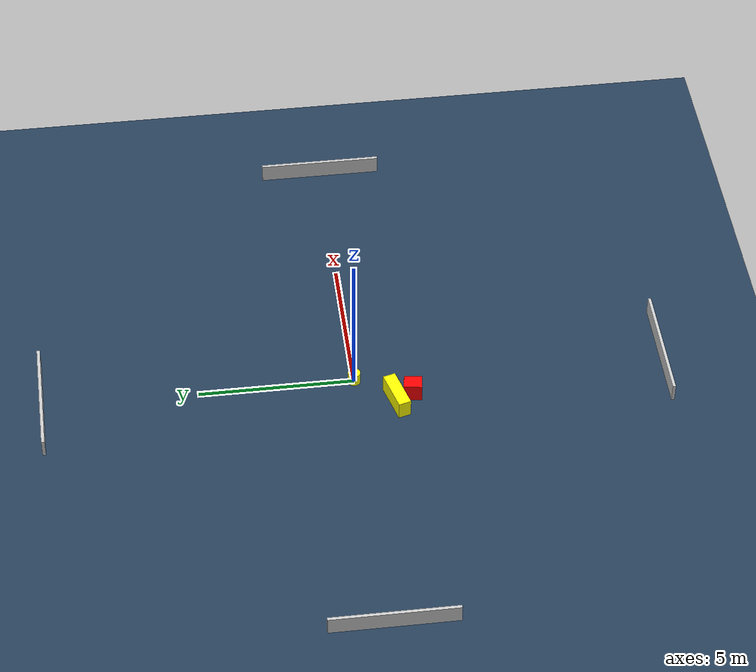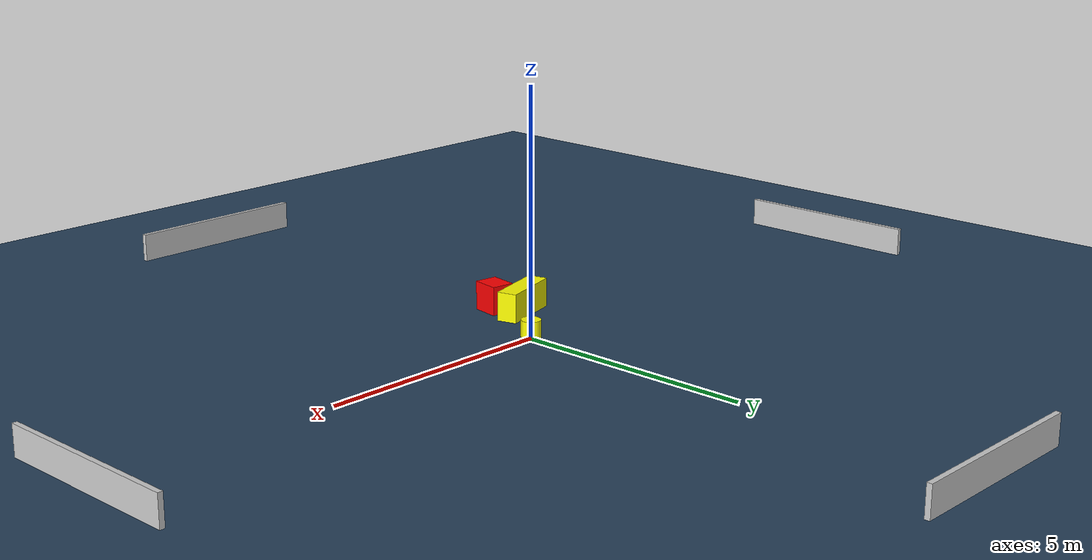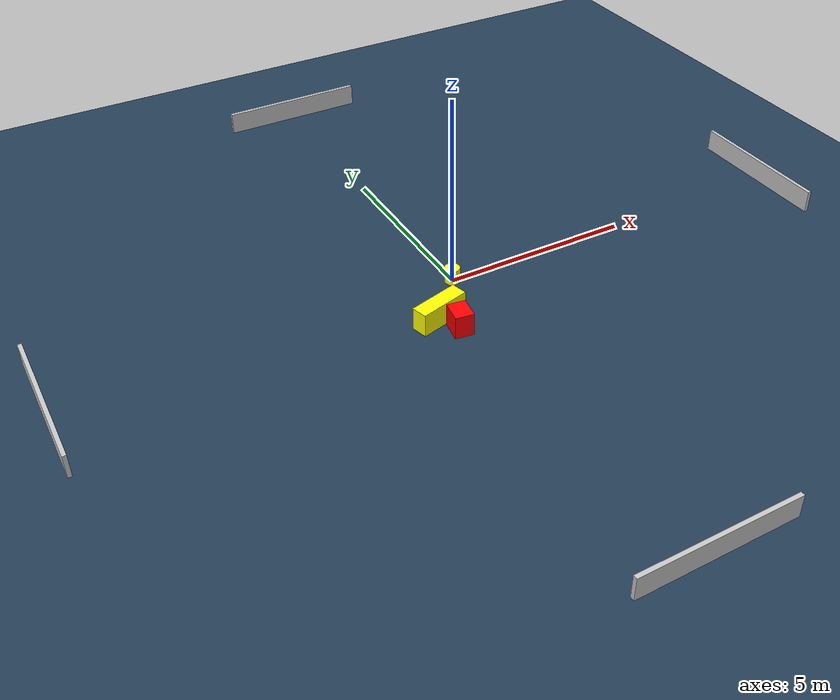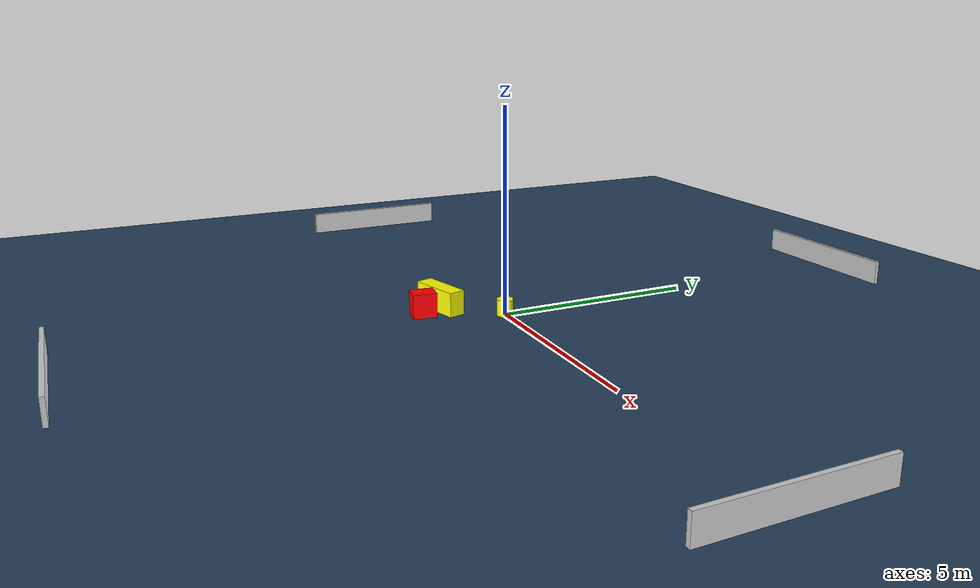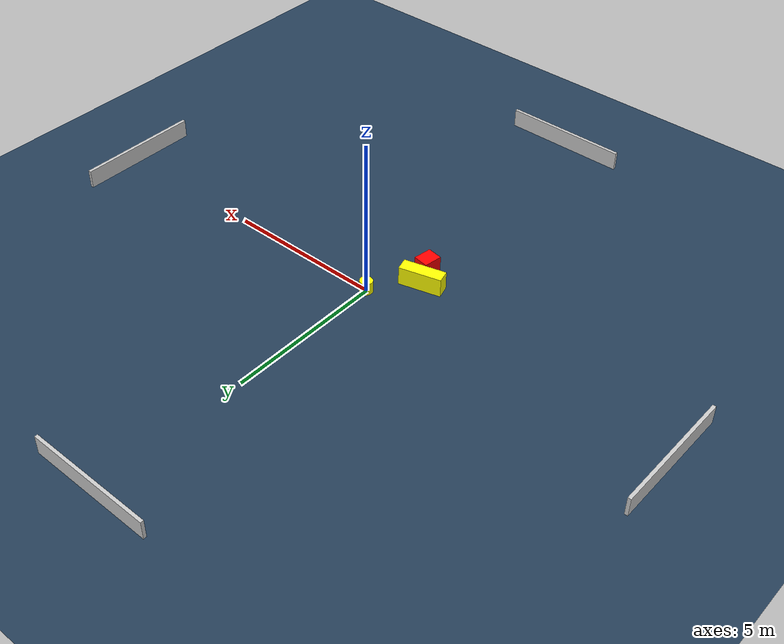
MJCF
<?xml version="1.0" ?>
<mujoco model="generated_environment">
  <option timestep="0.01" integrator="RK4" cone="elliptic"/>
  <default>
    <geom density="1"/>
  </default>
  <asset>
    <texture builtin="gradient" height="3072" name="skybox" rgb1="0.3 0.5 0.7" rgb2="0 0 0" type="skybox" width="512"/>
    <texture builtin="checker" height="300" name="groundplane" rgb1="0.2 0.3 0.4" rgb2="0.1 0.2 0.3" type="2d" width="300"/>
    <material name="groundplane" reflectance="0.2" texrepeat="5 5" texture="groundplane"/>
  </asset>
  <worldbody>
    <light dir="0 0 -1" directional="true" pos="0 0 1.5"/>
    <geom condim="3" friction="0.5 0.005 0.001" material="groundplane" name="floor" pos="0 0 0" size="0 0 0.05" type="plane"/>
    <body name="walls">
      <geom name="wall_1" condim="4" pos="-10.0 0.0 0.3" rgba="0.800000011920929 0.800000011920929 0.800000011920929 1.0" size="0.05 2.0 0.3" type="box"/>
      <geom name="wall_2" condim="4" pos="10.0 0.0 0.3" rgba="0.800000011920929 0.800000011920929 0.800000011920929 1.0" size="0.05 2.0 0.3" type="box"/>
      <geom name="wall_3" condim="4" pos="0.0 -10.0 0.3" rgba="0.800000011920929 0.800000011920929 0.800000011920929 1.0" size="2.0 0.05 0.3" type="box"/>
      <geom name="wall_4" condim="4" pos="0.0 10.0 0.3" rgba="0.800000011920929 0.800000011920929 0.800000011920929 1.0" size="2.0 0.05 0.3" type="box"/>
    </body>
    <body name="robot">
      <joint name="joint_x" type="slide" pos="0 0 0" axis="1 0 0"/>
      <joint name="joint_y" type="slide" pos="0 0 0" axis="0 1 0"/>
      <geom name="robot" type="cylinder" pos="0.0 0.0 0.2" size="0.2 0.2 0.0" mass="5.0" friction="1.0 0.005 0.0001" condim="4" rgba="1.0 1.0 0.0 1.0"/>
    </body>
    <body name="obstacle_1_movable">
      <geom name="obstacle_1_movable" condim="4" pos="-1.0591842721895008 -1.2409591013667305 0.3" euler="0 0 15.18073953365696" friction="0.0 0.005 0.001" rgba="1.0 1.0 0.0 1.0" size="0.6622050642202091 0.20689168320732476 0.3" type="box" mass="0.1"/>
      <joint type="free"/>
    </body>
    <body name="obstacle_2_static">
      <geom name="obstacle_2_static" condim="4" pos="-0.8034167660286767 -1.7896742064353297 0.3" euler="0 0 171.67026363228047" friction="0.0 0.005 0.001" rgba="1.0 0.0 0.0 1.0" size="0.23931937907839015 0.29036639312294554 0.3" type="box"/>
    </body>
  </worldbody>
  <actuator>
    <motor name="actuator_x" joint="joint_x" gear="1" ctrlrange="-1 1"/>
    <motor name="actuator_y" joint="joint_y" gear="1" ctrlrange="-1 1"/>
  </actuator>
</mujoco>
